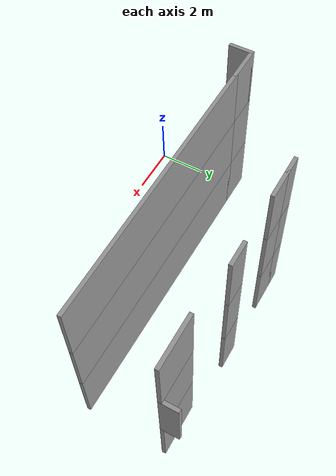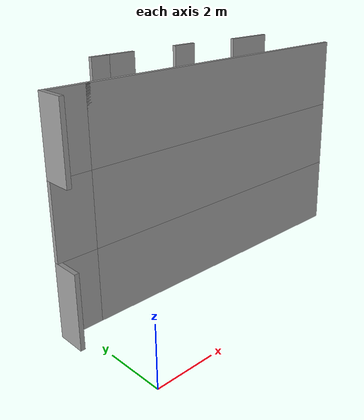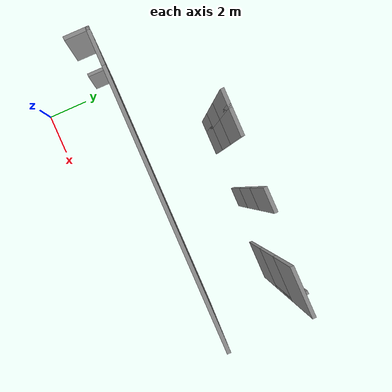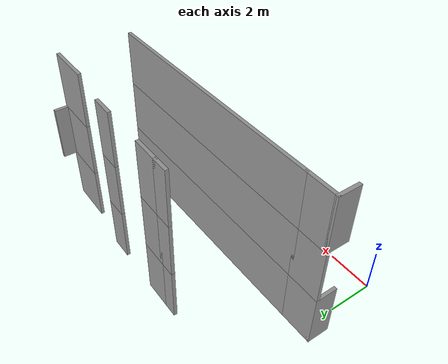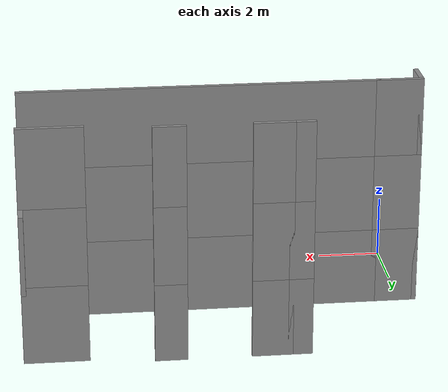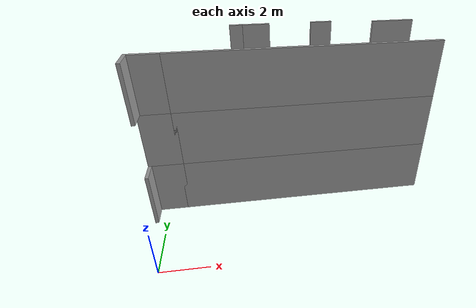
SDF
<sdf version="1.7">
 <model name="mapagazebo">
  <pose>-4.67869 9.01252 0 0 -0 0</pose>
  <link name="Wall_1127">
   <collision name="Wall_1127_Collision">
    <geometry><box><size>0.75 0.15 2.5</size></box></geometry>
    <pose>0 0 1.25 0 -0 0</pose>
   </collision>
   <visual name="Wall_1127_Visual">
    <pose>0 0 1.25 0 -0 0</pose>
    <geometry><box><size>0.75 0.15 2.5</size></box></geometry>
    <material>
     <script><uri>file://media/materials/scripts/gazebo.material</uri><name>Gazebo/Grey</name></script>
     <ambient>1 1 1 1</ambient>
    </material>
    <meta><layer>1</layer></meta>
   </visual>
   <pose>8.42733 -1.79706 2.5 0 -0 0</pose>
  </link>
  <link name="Wall_1128">
   <collision name="Wall_1128_Collision">
    <geometry><box><size>1.25 0.15 2.5</size></box></geometry>
    <pose>0 0 1.25 0 -0 0</pose>
   </collision>
   <visual name="Wall_1128_Visual">
    <pose>0 0 1.25 0 -0 0</pose>
    <geometry><box><size>1.25 0.15 2.5</size></box></geometry>
    <material>
     <script><uri>file://media/materials/scripts/gazebo.material</uri><name>Gazebo/Grey</name></script>
     <ambient>1 1 1 1</ambient>
    </material>
    <meta><layer>1</layer></meta>
   </visual>
   <pose>9.27733 -1.79706 2.5 0 -0 0</pose>
  </link>
  <link name="Wall_1132">
   <collision name="Wall_1132_Collision">
    <geometry><box><size>1 0.15 2.5</size></box></geometry>
    <pose>0 0 1.25 0 -0 0</pose>
   </collision>
   <visual name="Wall_1132_Visual">
    <pose>0 0 1.25 0 -0 0</pose>
    <geometry><box><size>1 0.15 2.5</size></box></geometry>
    <material>
     <script><uri>file://media/materials/scripts/gazebo.material</uri><name>Gazebo/Grey</name></script>
     <ambient>1 1 1 1</ambient>
    </material>
    <meta><layer>1</layer></meta>
   </visual>
   <pose>12.3523 -1.79706 2.5 0 -0 0</pose>
  </link>
  <link name="Wall_1136">
   <collision name="Wall_1136_Collision">
    <geometry><box><size>2 0.15 2.5</size></box></geometry>
    <pose>0 0 1.25 0 -0 0</pose>
   </collision>
   <visual name="Wall_1136_Visual">
    <pose>0 0 1.25 0 -0 0</pose>
    <geometry><box><size>2 0.15 2.5</size></box></geometry>
    <material>
     <script><uri>file://media/materials/scripts/gazebo.material</uri><name>Gazebo/Grey</name></script>
     <ambient>1 1 1 1</ambient>
    </material>
    <meta><layer>1</layer></meta>
   </visual>
   <pose>15.8023 -2.04706 2.5 0 -0 0</pose>
  </link>
  <link name="Wall_1137">
   <collision name="Wall_1137_Collision">
    <geometry><box><size>0.75 0.15 2.5</size></box></geometry>
    <pose>0 0 1.25 0 -0 0</pose>
   </collision>
   <visual name="Wall_1137_Visual">
    <pose>0 0 1.25 0 -0 0</pose>
    <geometry><box><size>0.75 0.15 2.5</size></box></geometry>
    <material>
     <script><uri>file://media/materials/scripts/gazebo.material</uri><name>Gazebo/Grey</name></script>
     <ambient>1 1 1 1</ambient>
    </material>
    <meta><layer>1</layer></meta>
   </visual>
   <pose>16.7273 -1.74706 2.5 0 -0 1.5708</pose>
  </link>
  <link name="Wall_1154">
   <collision name="Wall_1154_Collision">
    <geometry><box><size>1.5 0.15 2.5</size></box></geometry>
    <pose>0 0 1.25 0 -0 0</pose>
   </collision>
   <visual name="Wall_1154_Visual">
    <pose>0 0 1.25 0 -0 0</pose>
    <geometry><box><size>1.5 0.15 2.5</size></box></geometry>
    <material>
     <script><uri>file://media/materials/scripts/gazebo.material</uri><name>Gazebo/Grey</name></script>
     <ambient>1 1 1 1</ambient>
    </material>
    <meta><layer>1</layer></meta>
   </visual>
   <pose>4.89041 -5.30647 2.5 0 -0 0</pose>
  </link>
  <link name="Wall_1155">
   <collision name="Wall_1155_Collision">
    <geometry><box><size>11.25 0.15 2.5</size></box></geometry>
    <pose>0 0 1.25 0 -0 0</pose>
   </collision>
   <visual name="Wall_1155_Visual">
    <pose>0 0 1.25 0 -0 0</pose>
    <geometry><box><size>11.25 0.15 2.5</size></box></geometry>
    <material>
     <script><uri>file://media/materials/scripts/gazebo.material</uri><name>Gazebo/Grey</name></script>
     <ambient>1 1 1 1</ambient>
    </material>
    <meta><layer>1</layer></meta>
   </visual>
   <pose>11.1154 -5.30647 2.5 0 -0 0</pose>
  </link>
  <link name="Wall_1751">
   <collision name="Wall_1751_Collision">
    <geometry><box><size>0.75 0.15 2.5</size></box></geometry>
    <pose>0 0 1.25 0 -0 0</pose>
   </collision>
   <visual name="Wall_1751_Visual">
    <pose>0 0 1.25 0 -0 0</pose>
    <geometry><box><size>0.75 0.15 2.5</size></box></geometry>
    <material>
     <script><uri>file://media/materials/scripts/gazebo.material</uri><name>Gazebo/Grey</name></script>
     <ambient>1 1 1 1</ambient>
    </material>
    <meta><layer>2</layer></meta>
   </visual>
   <pose>8.42733 -1.79706 5 0 -0 0</pose>
  </link>
  <link name="Wall_1752">
   <collision name="Wall_1752_Collision">
    <geometry><box><size>1.25 0.15 2.5</size></box></geometry>
    <pose>0 0 1.25 0 -0 0</pose>
   </collision>
   <visual name="Wall_1752_Visual">
    <pose>0 0 1.25 0 -0 0</pose>
    <geometry><box><size>1.25 0.15 2.5</size></box></geometry>
    <material>
     <script><uri>file://media/materials/scripts/gazebo.material</uri><name>Gazebo/Grey</name></script>
     <ambient>1 1 1 1</ambient>
    </material>
    <meta><layer>2</layer></meta>
   </visual>
   <pose>9.27733 -1.79706 5 0 -0 0</pose>
  </link>
  <link name="Wall_1756">
   <collision name="Wall_1756_Collision">
    <geometry><box><size>1 0.15 2.5</size></box></geometry>
    <pose>0 0 1.25 0 -0 0</pose>
   </collision>
   <visual name="Wall_1756_Visual">
    <pose>0 0 1.25 0 -0 0</pose>
    <geometry><box><size>1 0.15 2.5</size></box></geometry>
    <material>
     <script><uri>file://media/materials/scripts/gazebo.material</uri><name>Gazebo/Grey</name></script>
     <ambient>1 1 1 1</ambient>
    </material>
    <meta><layer>2</layer></meta>
   </visual>
   <pose>12.3523 -1.79706 5 0 -0 0</pose>
  </link>
  <link name="Wall_1760">
   <collision name="Wall_1760_Collision">
    <geometry><box><size>2 0.15 2.5</size></box></geometry>
    <pose>0 0 1.25 0 -0 0</pose>
   </collision>
   <visual name="Wall_1760_Visual">
    <pose>0 0 1.25 0 -0 0</pose>
    <geometry><box><size>2 0.15 2.5</size></box></geometry>
    <material>
     <script><uri>file://media/materials/scripts/gazebo.material</uri><name>Gazebo/Grey</name></script>
     <ambient>1 1 1 1</ambient>
    </material>
    <meta><layer>2</layer></meta>
   </visual>
   <pose>15.8023 -2.04706 5 0 -0 0</pose>
  </link>
  <link name="Wall_1777">
   <collision name="Wall_1777_Collision">
    <geometry><box><size>1 0.15 2.5</size></box></geometry>
    <pose>0 0 1.25 0 -0 0</pose>
   </collision>
   <visual name="Wall_1777_Visual">
    <pose>0 0 1.25 0 -0 0</pose>
    <geometry><box><size>1 0.15 2.5</size></box></geometry>
    <material>
     <script><uri>file://media/materials/scripts/gazebo.material</uri><name>Gazebo/Grey</name></script>
     <ambient>1 1 1 1</ambient>
    </material>
    <meta><layer>2</layer></meta>
   </visual>
   <pose>4.21541 -5.73147 5 0 -0 1.5708</pose>
  </link>
  <link name="Wall_1778">
   <collision name="Wall_1778_Collision">
    <geometry><box><size>1.5 0.15 2.5</size></box></geometry>
    <pose>0 0 1.25 0 -0 0</pose>
   </collision>
   <visual name="Wall_1778_Visual">
    <pose>0 0 1.25 0 -0 0</pose>
    <geometry><box><size>1.5 0.15 2.5</size></box></geometry>
    <material>
     <script><uri>file://media/materials/scripts/gazebo.material</uri><name>Gazebo/Grey</name></script>
     <ambient>1 1 1 1</ambient>
    </material>
    <meta><layer>2</layer></meta>
   </visual>
   <pose>4.89041 -5.30647 5 0 -0 0</pose>
  </link>
  <link name="Wall_1779">
   <collision name="Wall_1779_Collision">
    <geometry><box><size>11.25 0.15 2.5</size></box></geometry>
    <pose>0 0 1.25 0 -0 0</pose>
   </collision>
   <visual name="Wall_1779_Visual">
    <pose>0 0 1.25 0 -0 0</pose>
    <geometry><box><size>11.25 0.15 2.5</size></box></geometry>
    <material>
     <script><uri>file://media/materials/scripts/gazebo.material</uri><name>Gazebo/Grey</name></script>
     <ambient>1 1 1 1</ambient>
    </material>
    <meta><layer>2</layer></meta>
   </visual>
   <pose>11.1154 -5.30647 5 0 -0 0</pose>
  </link>
  <link name="Wall_434">
   <collision name="Wall_434_Collision">
    <geometry><box><size>0.75 0.15 2.5</size></box></geometry>
    <pose>0 0 1.25 0 -0 0</pose>
   </collision>
   <visual name="Wall_434_Visual">
    <pose>0 0 1.25 0 -0 0</pose>
    <geometry><box><size>0.75 0.15 2.5</size></box></geometry>
    <material>
     <script><uri>file://media/materials/scripts/gazebo.material</uri><name>Gazebo/Grey</name></script>
     <ambient>1 1 1 1</ambient>
    </material>
    <meta><layer>0</layer></meta>
   </visual>
   <pose>8.42733 -1.79706 0 0 -0 0</pose>
  </link>
  <link name="Wall_435">
   <collision name="Wall_435_Collision">
    <geometry><box><size>1.25 0.15 2.5</size></box></geometry>
    <pose>0 0 1.25 0 -0 0</pose>
   </collision>
   <visual name="Wall_435_Visual">
    <pose>0 0 1.25 0 -0 0</pose>
    <geometry><box><size>1.25 0.15 2.5</size></box></geometry>
    <material>
     <script><uri>file://media/materials/scripts/gazebo.material</uri><name>Gazebo/Grey</name></script>
     <ambient>1 1 1 1</ambient>
    </material>
    <meta><layer>0</layer></meta>
   </visual>
   <pose>9.27733 -1.79706 0 0 -0 0</pose>
  </link>
  <link name="Wall_439">
   <collision name="Wall_439_Collision">
    <geometry><box><size>1 0.15 2.5</size></box></geometry>
    <pose>0 0 1.25 0 -0 0</pose>
   </collision>
   <visual name="Wall_439_Visual">
    <pose>0 0 1.25 0 -0 0</pose>
    <geometry><box><size>1 0.15 2.5</size></box></geometry>
    <material>
     <script><uri>file://media/materials/scripts/gazebo.material</uri><name>Gazebo/Grey</name></script>
     <ambient>1 1 1 1</ambient>
    </material>
    <meta><layer>0</layer></meta>
   </visual>
   <pose>12.3523 -1.79706 0 0 -0 0</pose>
  </link>
  <link name="Wall_443">
   <collision name="Wall_443_Collision">
    <geometry><box><size>2 0.15 2.5</size></box></geometry>
    <pose>0 0 1.25 0 -0 0</pose>
   </collision>
   <visual name="Wall_443_Visual">
    <pose>0 0 1.25 0 -0 0</pose>
    <geometry><box><size>2 0.15 2.5</size></box></geometry>
    <material>
     <script><uri>file://media/materials/scripts/gazebo.material</uri><name>Gazebo/Grey</name></script>
     <ambient>1 1 1 1</ambient>
    </material>
    <meta><layer>0</layer></meta>
   </visual>
   <pose>15.8023 -2.04706 0 0 -0 0</pose>
  </link>
  <link name="Wall_464">
   <collision name="Wall_464_Collision">
    <geometry><box><size>1 0.15 2.5</size></box></geometry>
    <pose>0 0 1.25 0 -0 0</pose>
   </collision>
   <visual name="Wall_464_Visual">
    <pose>0 0 1.25 0 -0 0</pose>
    <geometry><box><size>1 0.15 2.5</size></box></geometry>
    <material>
     <script><uri>file://media/materials/scripts/gazebo.material</uri><name>Gazebo/Grey</name></script>
     <ambient>1 1 1 1</ambient>
    </material>
    <meta><layer>0</layer></meta>
   </visual>
   <pose>4.21541 -5.73147 0 0 -0 1.5708</pose>
  </link>
  <link name="Wall_465">
   <collision name="Wall_465_Collision">
    <geometry><box><size>1.5 0.15 2.5</size></box></geometry>
    <pose>0 0 1.25 0 -0 0</pose>
   </collision>
   <visual name="Wall_465_Visual">
    <pose>0 0 1.25 0 -0 0</pose>
    <geometry><box><size>1.5 0.15 2.5</size></box></geometry>
    <material>
     <script><uri>file://media/materials/scripts/gazebo.material</uri><name>Gazebo/Grey</name></script>
     <ambient>1 1 1 1</ambient>
    </material>
    <meta><layer>0</layer></meta>
   </visual>
   <pose>4.89041 -5.30647 0 0 -0 0</pose>
  </link>
  <link name="Wall_467">
   <collision name="Wall_467_Collision">
    <geometry><box><size>11.25 0.15 2.5</size></box></geometry>
    <pose>0 0 1.25 0 -0 0</pose>
   </collision>
   <visual name="Wall_467_Visual">
    <pose>0 0 1.25 0 -0 0</pose>
    <geometry><box><size>11.25 0.15 2.5</size></box></geometry>
    <material>
     <script><uri>file://media/materials/scripts/gazebo.material</uri><name>Gazebo/Grey</name></script>
     <ambient>1 1 1 1</ambient>
    </material>
    <meta><layer>0</layer></meta>
   </visual>
   <pose>11.1154 -5.30647 0 0 -0 0</pose>
  </link>
  <static>1</static>
 </model>
</sdf>
